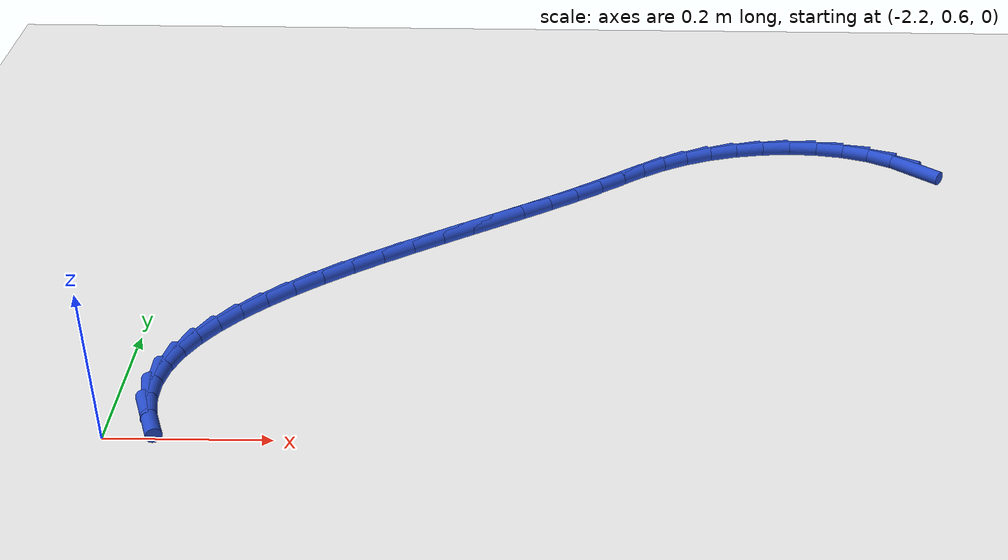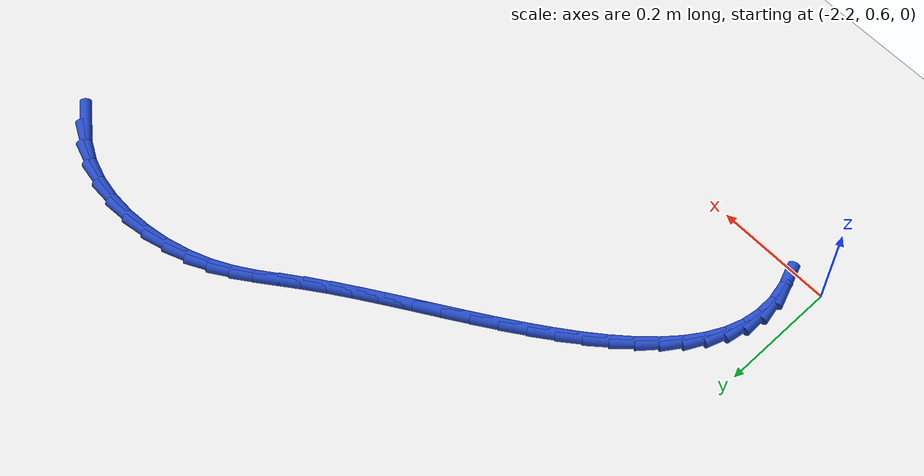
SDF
<sdf version="1.6">
 <world name="default">
  <model name="ground_plane">
   <static>1</static>
   <link name="link">
    <collision name="collision">
     <geometry><plane><normal>0 0 1</normal><size>100 100</size></plane></geometry>
     <surface><friction><ode><mu>100</mu><mu2>50</mu2></ode></friction></surface>
    </collision>
    <visual name="visual">
     <cast_shadows>0</cast_shadows>
     <geometry><plane><normal>0 0 1</normal><size>100 100</size></plane></geometry>
     <material>
      <script><uri>file://media/materials/scripts/gazebo.material</uri><name>Gazebo/WhiteGlow</name></script>
     </material>
    </visual>
   </link>
  </model>
  <model name="line">
   <link name="link_50">
    <pose>-1.168914504107076 1.2317043055437247 0.01 0 1.57 -0.675244704111775</pose>
    <collision name="collision">
     <geometry><cylinder><radius>0.01</radius><length>0.08</length></cylinder></geometry>
    </collision>
    <visual name="visual">
     <material>
      <script><name>Gazebo/Blue</name><uri>file://media/materials/scripts/gazebo.material</uri></script>
     </material>
     <geometry><cylinder><radius>0.01</radius><length>0.08</length></cylinder></geometry>
    </visual>
   </link>
   <link name="link_51">
    <pose>-1.1981844082858912 1.255144420540293 0.01 0 1.57 -0.48816108888344306</pose>
    <collision name="collision">
     <geometry><cylinder><radius>0.01</radius><length>0.08</length></cylinder></geometry>
    </collision>
    <visual name="visual">
     <material>
      <script><name>Gazebo/Blue</name><uri>file://media/materials/scripts/gazebo.material</uri></script>
     </material>
     <geometry><cylinder><radius>0.01</radius><length>0.08</length></cylinder></geometry>
    </visual>
   </link>
   <link name="link_52">
    <pose>-1.2313996828388218 1.272782673707708 0.01 0 1.57 -0.31623301540688836</pose>
    <collision name="collision">
     <geometry><cylinder><radius>0.01</radius><length>0.08</length></cylinder></geometry>
    </collision>
    <visual name="visual">
     <material>
      <script><name>Gazebo/Blue</name><uri>file://media/materials/scripts/gazebo.material</uri></script>
     </material>
     <geometry><cylinder><radius>0.01</radius><length>0.08</length></cylinder></geometry>
    </visual>
   </link>
   <link name="link_53">
    <pose>-1.2678703011335437 1.2847163679416875 0.01 0 1.57 -0.16814495296478454</pose>
    <collision name="collision">
     <geometry><cylinder><radius>0.01</radius><length>0.08</length></cylinder></geometry>
    </collision>
    <visual name="visual">
     <material>
      <script><name>Gazebo/Blue</name><uri>file://media/materials/scripts/gazebo.material</uri></script>
     </material>
     <geometry><cylinder><radius>0.01</radius><length>0.08</length></cylinder></geometry>
    </visual>
   </link>
   <link name="link_54">
    <pose>-1.3066729993485175 1.2913030374907157 0.01 0 1.57 -0.039698579184489505</pose>
    <collision name="collision">
     <geometry><cylinder><radius>0.01</radius><length>0.08</length></cylinder></geometry>
    </collision>
    <visual name="visual">
     <material>
      <script><name>Gazebo/Blue</name><uri>file://media/materials/scripts/gazebo.material</uri></script>
     </material>
     <geometry><cylinder><radius>0.01</radius><length>0.08</length></cylinder></geometry>
    </visual>
   </link>
   <link name="link_55">
    <pose>-1.3468845136622034 1.2929002166032757 0.01 0 1.57 0.07443216153174423</pose>
    <collision name="collision">
     <geometry><cylinder><radius>0.01</radius><length>0.08</length></cylinder></geometry>
    </collision>
    <visual name="visual">
     <material>
      <script><name>Gazebo/Blue</name><uri>file://media/materials/scripts/gazebo.material</uri></script>
     </material>
     <geometry><cylinder><radius>0.01</radius><length>0.08</length></cylinder></geometry>
    </visual>
   </link>
   <link name="link_56">
    <pose>-1.3875815802530633 1.289865439527852 0.01 0 1.57 0.1795966073375467</pose>
    <collision name="collision">
     <geometry><cylinder><radius>0.01</radius><length>0.08</length></cylinder></geometry>
    </collision>
    <visual name="visual">
     <material>
      <script><name>Gazebo/Blue</name><uri>file://media/materials/scripts/gazebo.material</uri></script>
     </material>
     <geometry><cylinder><radius>0.01</radius><length>0.08</length></cylinder></geometry>
    </visual>
   </link>
   <link name="link_57">
    <pose>-1.4278409352995571 1.282556240512927 0.01 0 1.57 0.2809658851779167</pose>
    <collision name="collision">
     <geometry><cylinder><radius>0.01</radius><length>0.08</length></cylinder></geometry>
    </collision>
    <visual name="visual">
     <material>
      <script><name>Gazebo/Blue</name><uri>file://media/materials/scripts/gazebo.material</uri></script>
     </material>
     <geometry><cylinder><radius>0.01</radius><length>0.08</length></cylinder></geometry>
    </visual>
   </link>
   <link name="link_58">
    <pose>-1.466739314980146 1.2713301538069857 0.01 0 1.57 0.38379320949071705</pose>
    <collision name="collision">
     <geometry><cylinder><radius>0.01</radius><length>0.08</length></cylinder></geometry>
    </collision>
    <visual name="visual">
     <material>
      <script><name>Gazebo/Blue</name><uri>file://media/materials/scripts/gazebo.material</uri></script>
     </material>
     <geometry><cylinder><radius>0.01</radius><length>0.08</length></cylinder></geometry>
    </visual>
   </link>
   <link name="link_59">
    <pose>-1.5033534554732912 1.256544713658511 0.01 0 1.57 0.49211683239694737</pose>
    <collision name="collision">
     <geometry><cylinder><radius>0.01</radius><length>0.08</length></cylinder></geometry>
    </collision>
    <visual name="visual">
     <material>
      <script><name>Gazebo/Blue</name><uri>file://media/materials/scripts/gazebo.material</uri></script>
     </material>
     <geometry><cylinder><radius>0.01</radius><length>0.08</length></cylinder></geometry>
    </visual>
   </link>
   <link name="link_60">
    <pose>-1.536870098872072 1.2385760958555416 0.01 0 1.57 0.5849647606834006</pose>
    <collision name="collision">
     <geometry><cylinder><radius>0.01</radius><length>0.08</length></cylinder></geometry>
    </collision>
    <visual name="visual">
     <material>
      <script><name>Gazebo/Blue</name><uri>file://media/materials/scripts/gazebo.material</uri></script>
     </material>
     <geometry><cylinder><radius>0.01</radius><length>0.08</length></cylinder></geometry>
    </visual>
   </link>
   <link name="link_61">
    <pose>-1.567880271418375 1.2180384453770978 0.01 0 1.57 0.6388057241372667</pose>
    <collision name="collision">
     <geometry><cylinder><radius>0.01</radius><length>0.08</length></cylinder></geometry>
    </collision>
    <visual name="visual">
     <material>
      <script><name>Gazebo/Blue</name><uri>file://media/materials/scripts/gazebo.material</uri></script>
     </material>
     <geometry><cylinder><radius>0.01</radius><length>0.08</length></cylinder></geometry>
    </visual>
   </link>
   <link name="link_62">
    <pose>-1.5979443582272108 1.195710174204008 0.01 0 1.57 0.650015130184485</pose>
    <collision name="collision">
     <geometry><cylinder><radius>0.01</radius><length>0.08</length></cylinder></geometry>
    </collision>
    <visual name="visual">
     <material>
      <script><name>Gazebo/Blue</name><uri>file://media/materials/scripts/gazebo.material</uri></script>
     </material>
     <geometry><cylinder><radius>0.01</radius><length>0.08</length></cylinder></geometry>
    </visual>
   </link>
   <link name="link_63">
    <pose>-1.6286420017652314 1.1723729576569268 0.01 0 1.57 0.6257677494787998</pose>
    <collision name="collision">
     <geometry><cylinder><radius>0.01</radius><length>0.08</length></cylinder></geometry>
    </collision>
    <visual name="visual">
     <material>
      <script><name>Gazebo/Blue</name><uri>file://media/materials/scripts/gazebo.material</uri></script>
     </material>
     <geometry><cylinder><radius>0.01</radius><length>0.08</length></cylinder></geometry>
    </visual>
   </link>
   <link name="link_64">
    <pose>-1.6613583724822107 1.1487303911608941 0.01 0 1.57 0.5991002757055448</pose>
    <collision name="collision">
     <geometry><cylinder><radius>0.01</radius><length>0.08</length></cylinder></geometry>
    </collision>
    <visual name="visual">
     <material>
      <script><name>Gazebo/Blue</name><uri>file://media/materials/scripts/gazebo.material</uri></script>
     </material>
     <geometry><cylinder><radius>0.01</radius><length>0.08</length></cylinder></geometry>
    </visual>
   </link>
   <link name="link_65">
    <pose>-1.696169790203636 1.1249605707824295 0.01 0 1.57 0.5811417595870895</pose>
    <collision name="collision">
     <geometry><cylinder><radius>0.01</radius><length>0.08</length></cylinder></geometry>
    </collision>
    <visual name="visual">
     <material>
      <script><name>Gazebo/Blue</name><uri>file://media/materials/scripts/gazebo.material</uri></script>
     </material>
     <geometry><cylinder><radius>0.01</radius><length>0.08</length></cylinder></geometry>
    </visual>
   </link>
   <link name="link_66">
    <pose>-1.7326126786650409 1.1010248260268634 0.01 0 1.57 0.5706550872841195</pose>
    <collision name="collision">
     <geometry><cylinder><radius>0.01</radius><length>0.08</length></cylinder></geometry>
    </collision>
    <visual name="visual">
     <material>
      <script><name>Gazebo/Blue</name><uri>file://media/materials/scripts/gazebo.material</uri></script>
     </material>
     <geometry><cylinder><radius>0.01</radius><length>0.08</length></cylinder></geometry>
    </visual>
   </link>
   <link name="link_67">
    <pose>-1.7702217701656295 1.076883807293224 0.01 0 1.57 0.566850609818267</pose>
    <collision name="collision">
     <geometry><cylinder><radius>0.01</radius><length>0.08</length></cylinder></geometry>
    </collision>
    <visual name="visual">
     <material>
      <script><name>Gazebo/Blue</name><uri>file://media/materials/scripts/gazebo.material</uri></script>
     </material>
     <geometry><cylinder><radius>0.01</radius><length>0.08</length></cylinder></geometry>
    </visual>
   </link>
   <link name="link_68">
    <pose>-1.8085317970046058 1.0524981649805407 0.01 0 1.57 0.5693200197162587</pose>
    <collision name="collision">
     <geometry><cylinder><radius>0.01</radius><length>0.08</length></cylinder></geometry>
    </collision>
    <visual name="visual">
     <material>
      <script><name>Gazebo/Blue</name><uri>file://media/materials/scripts/gazebo.material</uri></script>
     </material>
     <geometry><cylinder><radius>0.01</radius><length>0.08</length></cylinder></geometry>
    </visual>
   </link>
   <link name="link_69">
    <pose>-1.8470774914811734 1.0278285494878414 0.01 0 1.57 0.5779784907206069</pose>
    <collision name="collision">
     <geometry><cylinder><radius>0.01</radius><length>0.08</length></cylinder></geometry>
    </collision>
    <visual name="visual">
     <material>
      <script><name>Gazebo/Blue</name><uri>file://media/materials/scripts/gazebo.material</uri></script>
     </material>
     <geometry><cylinder><radius>0.01</radius><length>0.08</length></cylinder></geometry>
    </visual>
   </link>
   <link name="link_70">
    <pose>-1.885393585894537 1.002835611214156 0.01 0 1.57 0.593042323470632</pose>
    <collision name="collision">
     <geometry><cylinder><radius>0.01</radius><length>0.08</length></cylinder></geometry>
    </collision>
    <visual name="visual">
     <material>
      <script><name>Gazebo/Blue</name><uri>file://media/materials/scripts/gazebo.material</uri></script>
     </material>
     <geometry><cylinder><radius>0.01</radius><length>0.08</length></cylinder></geometry>
    </visual>
   </link>
   <link name="link_71">
    <pose>-1.9230148125438993 0.9774800005585128 0.01 0 1.57 0.6150361345860085</pose>
    <collision name="collision">
     <geometry><cylinder><radius>0.01</radius><length>0.08</length></cylinder></geometry>
    </collision>
    <visual name="visual">
     <material>
      <script><name>Gazebo/Blue</name><uri>file://media/materials/scripts/gazebo.material</uri></script>
     </material>
     <geometry><cylinder><radius>0.01</radius><length>0.08</length></cylinder></geometry>
    </visual>
   </link>
   <link name="link_72">
    <pose>-1.959475903728466 0.9517223679199402 0.01 0 1.57 0.6448269460676399</pose>
    <collision name="collision">
     <geometry><cylinder><radius>0.01</radius><length>0.08</length></cylinder></geometry>
    </collision>
    <visual name="visual">
     <material>
      <script><name>Gazebo/Blue</name><uri>file://media/materials/scripts/gazebo.material</uri></script>
     </material>
     <geometry><cylinder><radius>0.01</radius><length>0.08</length></cylinder></geometry>
    </visual>
   </link>
   <link name="link_73">
    <pose>-1.9943115917474394 0.925523363697467 0.01 0 1.57 0.6836836219163933</pose>
    <collision name="collision">
     <geometry><cylinder><radius>0.01</radius><length>0.08</length></cylinder></geometry>
    </collision>
    <visual name="visual">
     <material>
      <script><name>Gazebo/Blue</name><uri>file://media/materials/scripts/gazebo.material</uri></script>
     </material>
     <geometry><cylinder><radius>0.01</radius><length>0.08</length></cylinder></geometry>
    </visual>
   </link>
   <link name="link_74">
    <pose>-2.0270566089000255 0.8988436382901224 0.01 0 1.57 0.7333570089046385</pose>
    <collision name="collision">
     <geometry><cylinder><radius>0.01</radius><length>0.08</length></cylinder></geometry>
    </collision>
    <visual name="visual">
     <material>
      <script><name>Gazebo/Blue</name><uri>file://media/materials/scripts/gazebo.material</uri></script>
     </material>
     <geometry><cylinder><radius>0.01</radius><length>0.08</length></cylinder></geometry>
    </visual>
   </link>
   <link name="link_75">
    <pose>-2.057245687485426 0.8716438420969348 0.01 0 1.57 0.7961637333405819</pose>
    <collision name="collision">
     <geometry><cylinder><radius>0.01</radius><length>0.08</length></cylinder></geometry>
    </collision>
    <visual name="visual">
     <material>
      <script><name>Gazebo/Blue</name><uri>file://media/materials/scripts/gazebo.material</uri></script>
     </material>
     <geometry><cylinder><radius>0.01</radius><length>0.08</length></cylinder></geometry>
    </visual>
   </link>
   <link name="link_76">
    <pose>-2.0844135598028464 0.8438846255169334 0.01 0 1.57 0.8750237339570035</pose>
    <collision name="collision">
     <geometry><cylinder><radius>0.01</radius><length>0.08</length></cylinder></geometry>
    </collision>
    <visual name="visual">
     <material>
      <script><name>Gazebo/Blue</name><uri>file://media/materials/scripts/gazebo.material</uri></script>
     </material>
     <geometry><cylinder><radius>0.01</radius><length>0.08</length></cylinder></geometry>
    </visual>
   </link>
   <link name="link_77">
    <pose>-2.1080949581514905 0.8155266389491466 0.01 0 1.57 0.9733295523869675</pose>
    <collision name="collision">
     <geometry><cylinder><radius>0.01</radius><length>0.08</length></cylinder></geometry>
    </collision>
    <visual name="visual">
     <material>
      <script><name>Gazebo/Blue</name><uri>file://media/materials/scripts/gazebo.material</uri></script>
     </material>
     <geometry><cylinder><radius>0.01</radius><length>0.08</length></cylinder></geometry>
    </visual>
   </link>
   <link name="link_78">
    <pose>-2.127824614830562 0.7865305327926031 0.01 0 1.57 1.0944019953105522</pose>
    <collision name="collision">
     <geometry><cylinder><radius>0.01</radius><length>0.08</length></cylinder></geometry>
    </collision>
    <visual name="visual">
     <material>
      <script><name>Gazebo/Blue</name><uri>file://media/materials/scripts/gazebo.material</uri></script>
     </material>
     <geometry><cylinder><radius>0.01</radius><length>0.08</length></cylinder></geometry>
    </visual>
   </link>
   <link name="link_79">
    <pose>-2.143137262139265 0.7568569574463322 0.01 0 1.57 1.2401808194811237</pose>
    <collision name="collision">
     <geometry><cylinder><radius>0.01</radius><length>0.08</length></cylinder></geometry>
    </collision>
    <visual name="visual">
     <material>
      <script><name>Gazebo/Blue</name><uri>file://media/materials/scripts/gazebo.material</uri></script>
     </material>
     <geometry><cylinder><radius>0.01</radius><length>0.08</length></cylinder></geometry>
    </visual>
   </link>
   <link name="link_80">
    <pose>-2.153567632376804 0.7264665633093623 0.01 0 1.57 1.4090316867235588</pose>
    <collision name="collision">
     <geometry><cylinder><radius>0.01</radius><length>0.08</length></cylinder></geometry>
    </collision>
    <visual name="visual">
     <material>
      <script><name>Gazebo/Blue</name><uri>file://media/materials/scripts/gazebo.material</uri></script>
     </material>
     <geometry><cylinder><radius>0.01</radius><length>0.08</length></cylinder></geometry>
    </visual>
   </link>
   <link name="link_81">
    <pose>-2.158650457842382 0.6953200007807221 0.01 0 1.57 -1.5479468458259094</pose>
    <collision name="collision">
     <geometry><cylinder><radius>0.01</radius><length>0.08</length></cylinder></geometry>
    </collision>
    <visual name="visual">
     <material>
      <script><name>Gazebo/Blue</name><uri>file://media/materials/scripts/gazebo.material</uri></script>
     </material>
     <geometry><cylinder><radius>0.01</radius><length>0.08</length></cylinder></geometry>
    </visual>
   </link>
   <link name="link_82">
    <pose>-2.1579204708352036 0.6633779202594405 0.01 0 1.57 -1.3602086878944792</pose>
    <collision name="collision">
     <geometry><cylinder><radius>0.01</radius><length>0.08</length></cylinder></geometry>
    </collision>
    <visual name="visual">
     <material>
      <script><name>Gazebo/Blue</name><uri>file://media/materials/scripts/gazebo.material</uri></script>
     </material>
     <geometry><cylinder><radius>0.01</radius><length>0.08</length></cylinder></geometry>
    </visual>
   </link>
   <link name="link_83">
    <pose>-2.1509142050784487 0.6306011201642177 0.01 0 1.57 -1.201493852448909</pose>
    <collision name="collision">
     <geometry><cylinder><radius>0.01</radius><length>0.08</length></cylinder></geometry>
    </collision>
    <visual name="visual">
     <material>
      <script><name>Gazebo/Blue</name><uri>file://media/materials/scripts/gazebo.material</uri></script>
     </material>
     <geometry><cylinder><radius>0.01</radius><length>0.08</length></cylinder></geometry>
    </visual>
   </link>
  </model>
 </world>
</sdf>
